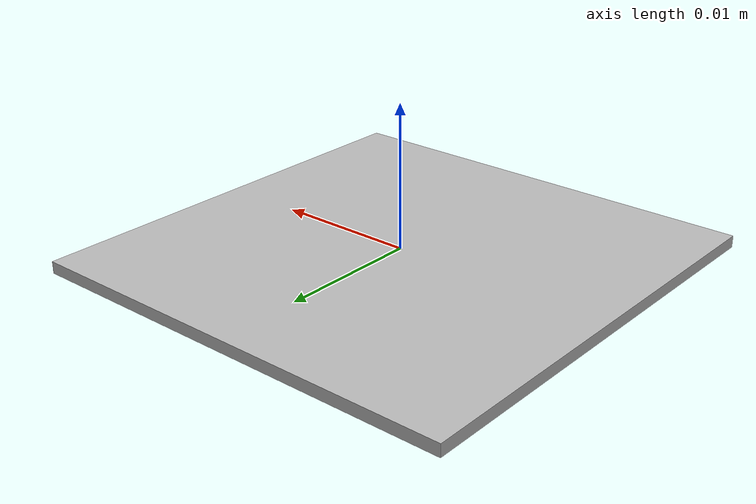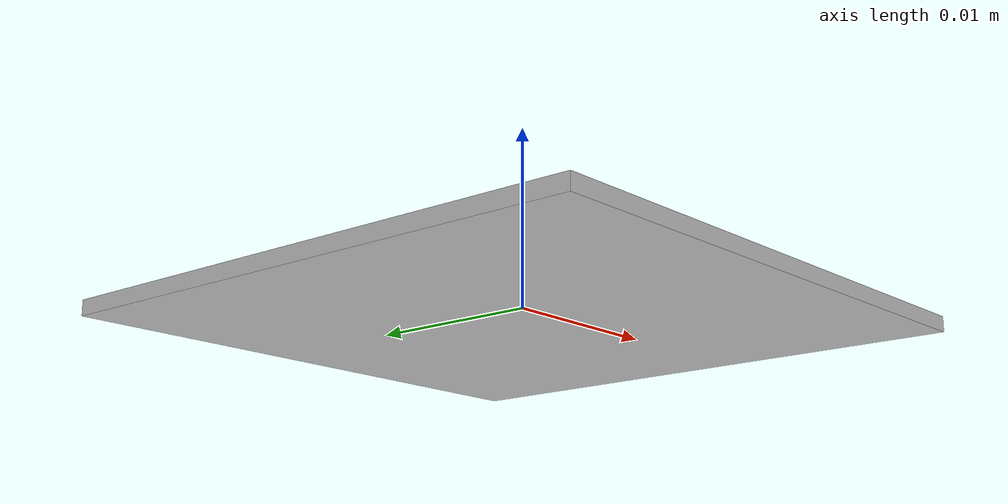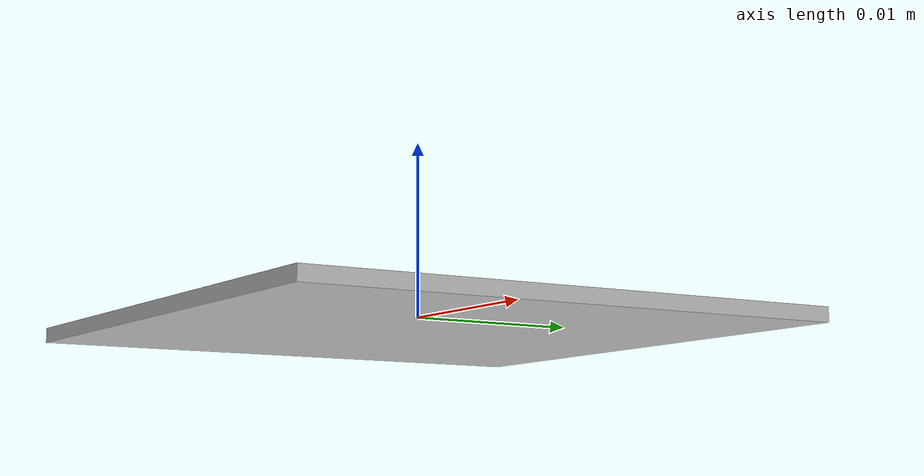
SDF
<?xml version="1.0" ?><sdf version="1.6">
  <model name="tag36_11_00010">
    <static>false</static>
    <link name="link">
      <visual name="visual">
        <geometry>
          <mesh>
            <uri>model://tag36_11_00010/meshes/tag36_11_00010.dae</uri>
          <scale>0.17 0.17 0.17</scale></mesh>
        </geometry>
      </visual>
      <inertial>
        <mass>0.05</mass>
        <inertia>
          <ixx>1e-6</ixx>
          <ixy>0</ixy>
          <ixz>0</ixz>
          <iyy>1e-6</iyy>
          <iyz>0</iyz>
          <izz>1e-6</izz>
        </inertia>
        <pose frame=''>0 0 0 0 -0 0</pose>
      </inertial>
    </link>
  </model>
</sdf>
